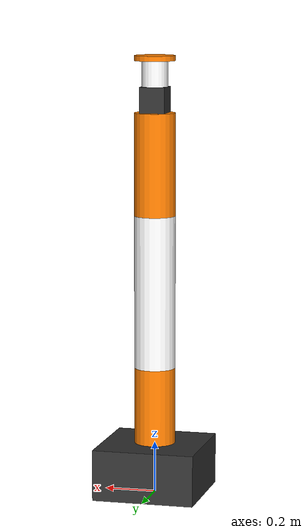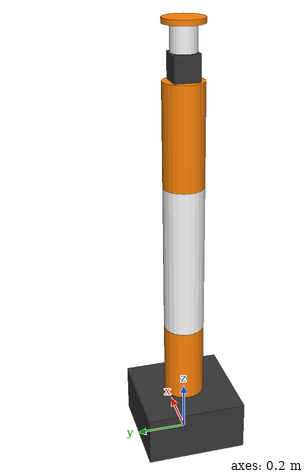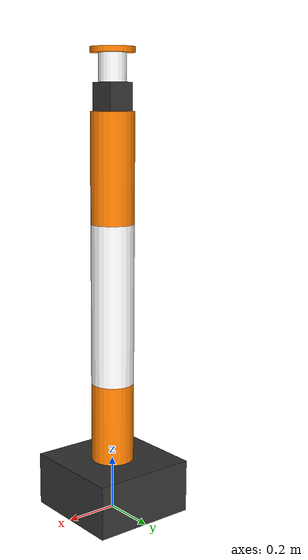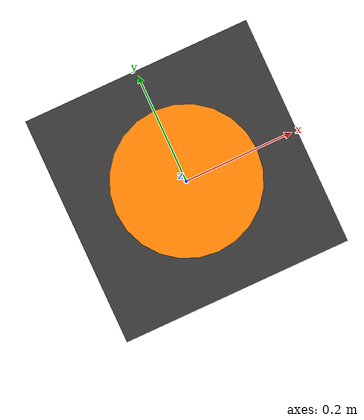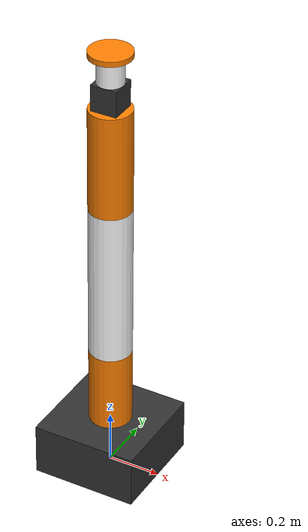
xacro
<?xml version="1.0"?>
<robot xmlns:xacro="http://www.ros.org/wiki/xacro" name="my_robot">

    <xacro:include filename="materials.xacro"/>
    <xacro:include filename="inertial_macros.xacro"/>

    <xacro:property name="base_width" value="0.4"/>
    <xacro:property name="base_height" value="0.2"/>
    <xacro:property name="link_radius" value="0.08"/>
    <xacro:property name="link_length" value="0.6"/>

    <ros2_control name="GazeboSystem" type="system">
        <hardware>
            <plugin>gazebo_ros2_control/GazeboSystem</plugin>
        </hardware>

        <joint name="joint_1">
            <command_interface name="position">
                <param name="min">-3.14</param>
                <param name="max">3.14</param>
            </command_interface>
            <state_interface name="position"/>
            <state_interface name="velocity"/>
        </joint>

        <joint name="joint_2">
            <command_interface name="position">
                <param name="min">-3.14</param>
                <param name="max">3.14</param>
            </command_interface>
            <state_interface name="position"/>
            <state_interface name="velocity"/>
        </joint>

        <joint name="joint_3">
            <command_interface name="position">
                <param name="min">-3.14</param>
                <param name="max">3.14</param>
            </command_interface>
            <state_interface name="position"/>
            <state_interface name="velocity"/>
        </joint>

        <joint name="joint_4">
            <command_interface name="position">
                <param name="min">-3.14</param>
                <param name="max">3.14</param>
            </command_interface>
            <state_interface name="position"/>
            <state_interface name="velocity"/>
        </joint>

        <joint name="joint_5">
            <command_interface name="position">
                <param name="min">-3.14</param>
                <param name="max">3.14</param>
            </command_interface>
            <state_interface name="position"/>
            <state_interface name="velocity"/>
        </joint>

        <joint name="joint_6">
            <command_interface name="position">
                <param name="min">-3.14</param>
                <param name="max">3.14</param>
            </command_interface>
            <state_interface name="position"/>
            <state_interface name="velocity"/>
        </joint>
    </ros2_control>

    <link name="base_link">
        <visual>
            <geometry>
                 <box size="${base_width} ${base_width} ${base_height}"/>
            </geometry>
            <origin xyz="0 0 ${base_height/2}" rpy="0 0 0"/>
            <material name="grey"/>
        </visual>
        <collision>
            <geometry>
                 <box size="${base_width} ${base_width} ${base_height}"/>
            </geometry>
            <origin xyz="0 0 ${base_height/2}" rpy="0 0 0"/>
        </collision>
        <xacro:inertial_box mass="12.0" x="${base_width}" y="${base_width}" z="${base_height}">
            <origin xyz="0 0 ${base_height/2}" rpy="0 0 0"/>
        </xacro:inertial_box>
    </link>
    <gazebo reference="base_link">
        <material>Gazebo/Grey</material>
    </gazebo>

    <joint name="joint_1" type="revolute">
        <parent link="base_link"/>
        <child link="link_1"/>
        <origin xyz="0 0 ${base_height}" rpy="0 0 0"/>
        <axis xyz="0 0 1"/>
        <limit lower="-3.14" upper="3.14" effort="100" velocity="1.0"/>
        <dynamics damping="0.1" friction="0.1"/>
    </joint>

    <link name="link_1">
        <visual>
            <geometry>
                <cylinder radius="${link_radius}" length="0.3"/>
            </geometry>
            <origin xyz="0 0 0.15" rpy="0 0 0"/>
            <material name="orange"/>
        </visual>
        <collision>
            <geometry>
                <cylinder radius="${link_radius}" length="0.3"/>
            </geometry>
            <origin xyz="0 0 0.15" rpy="0 0 0"/>
        </collision>
        <xacro:inertial_cylinder mass="4.0" length="0.3" radius="${link_radius}">
            <origin xyz="0 0 0.15" rpy="0 0 0"/>
        </xacro:inertial_cylinder>
    </link>
    <gazebo reference="link_1">
        <material>Gazebo/Orange</material>
    </gazebo>

    <joint name="joint_2" type="revolute">
        <parent link="link_1"/>
        <child link="link_2"/>
        <origin xyz="0 0 0.3" rpy="0 0 0"/>
        <axis xyz="0 1 0"/>
        <limit lower="-3.14" upper="3.14" effort="100" velocity="1.0"/>
        <dynamics damping="0.1" friction="0.1"/>
    </joint>

    <link name="link_2">
        <visual>
            <geometry>
                <cylinder radius="${link_radius}" length="${link_length}"/>
            </geometry>
            <origin xyz="0 0 ${link_length/2}" rpy="0 0 0"/>
            <material name="white"/>
        </visual>
        <collision>
            <geometry>
                <cylinder radius="${link_radius}" length="${link_length}"/>
            </geometry>
            <origin xyz="0 0 ${link_length/2}" rpy="0 0 0"/>
        </collision>
        <xacro:inertial_cylinder mass="2.0" length="${link_length}" radius="${link_radius}">
            <origin xyz="0 0 ${link_length/2}" rpy="0 0 0"/>
        </xacro:inertial_cylinder>
    </link>
    <gazebo reference="link_2">
        <material>Gazebo/White</material>
    </gazebo>

    <joint name="joint_3" type="revolute">
        <parent link="link_2"/>
        <child link="link_3"/>
        <origin xyz="0 0 ${link_length}" rpy="0 0 0"/>
        <axis xyz="0 1 0"/>
        <limit lower="-3.14" upper="3.14" effort="100" velocity="1.0"/>
        <dynamics damping="0.1" friction="0.1"/>
    </joint>

    <link name="link_3">
        <visual>
            <geometry>
                <cylinder radius="${link_radius}" length="${link_length/1.5}"/>
            </geometry>
            <origin xyz="0 0 ${link_length/3}" rpy="0 0 0"/>
            <material name="orange"/>
        </visual>
        <collision>
            <geometry>
                <cylinder radius="${link_radius}" length="${link_length/1.5}"/>
            </geometry>
            <origin xyz="0 0 ${link_length/3}" rpy="0 0 0"/>
        </collision>
        <xacro:inertial_cylinder mass="2.0" length="${link_length/1.5}" radius="${link_radius}">
            <origin xyz="0 0 ${link_length/3}" rpy="0 0 0"/>
        </xacro:inertial_cylinder>
    </link>
    <gazebo reference="link_3">
        <material>Gazebo/Orange</material>
    </gazebo>

    <joint name="joint_4" type="revolute">
        <parent link="link_3"/>
        <child link="link_4"/>
        <origin xyz="0 0 ${link_length/1.5}" rpy="0 0 0"/>
        <axis xyz="0 1 0"/>
        <limit lower="-3.14" upper="3.14" effort="100" velocity="1.0"/>
        <dynamics damping="0.1" friction="0.1"/>
    </joint>

    <link name="link_4">
        <visual>
            <geometry>
                <box size="0.1 0.1 0.1"/>
            </geometry>
            <origin xyz="0 0 0.05" rpy="0 0 0"/>
            <material name="grey"/>
        </visual>
        <collision>
            <geometry>
                <box size="0.1 0.1 0.1"/>
            </geometry>
            <origin xyz="0 0 0.05" rpy="0 0 0"/>
        </collision>
        <xacro:inertial_box mass="0.5" x="0.1" y="0.1" z="0.1">
            <origin xyz="0 0 0.05" rpy="0 0 0"/>
        </xacro:inertial_box>
    </link>
    <gazebo reference="link_4">
        <material>Gazebo/Grey</material>
    </gazebo>

    <joint name="joint_5" type="revolute">
        <parent link="link_4"/>
        <child link="link_5"/>
        <origin xyz="0 0 0.1" rpy="0 0 0"/>
        <axis xyz="0 0 1"/>
        <limit lower="-3.14" upper="3.14" effort="100" velocity="1.0"/>
        <dynamics damping="0.1" friction="0.1"/>
    </joint>

    <link name="link_5">
        <visual>
            <geometry>
                <cylinder radius="0.05" length="0.1"/>
            </geometry>
            <origin xyz="0 0 0.05" rpy="0 0 0"/>
            <material name="white"/>
        </visual>
        <collision>
            <geometry>
                <cylinder radius="0.05" length="0.1"/>
            </geometry>
            <origin xyz="0 0 0.05" rpy="0 0 0"/>
        </collision>
        <xacro:inertial_cylinder mass="0.5" length="0.1" radius="0.05">
            <origin xyz="0 0 0.05" rpy="0 0 0"/>
        </xacro:inertial_cylinder>
    </link>
    <gazebo reference="link_5">
        <material>Gazebo/White</material>
    </gazebo>

    <joint name="joint_6" type="revolute">
        <parent link="link_5"/>
        <child link="link_6"/>
        <origin xyz="0 0 0.1" rpy="0 0 0"/>
        <axis xyz="1 0 0"/>
        <limit lower="-3.14" upper="3.14" effort="100" velocity="1.0"/>
        <dynamics damping="0.1" friction="0.1"/>
    </joint>

    <link name="link_6">
        <visual>
            <geometry>
                <cylinder radius="0.08" length="0.02"/>
            </geometry>
            <origin xyz="0 0 0.01" rpy="0 0 0"/>
            <material name="orange"/>
        </visual>
        <collision>
            <geometry>
                <cylinder radius="0.08" length="0.02"/>
            </geometry>
            <origin xyz="0 0 0.01" rpy="0 0 0"/>
        </collision>
        <xacro:inertial_cylinder mass="0.2" length="0.02" radius="0.08">
            <origin xyz="0 0 0.01" rpy="0 0 0"/>
        </xacro:inertial_cylinder>
    </link>
    <gazebo reference="link_6">
        <material>Gazebo/Orange</material>
    </gazebo>

    <gazebo>
        <plugin filename="libgazebo_ros2_control.so" name="gazebo_ros2_control">
            <parameters>$(find my_robot_description)/config/my_controllers.yaml</parameters>
        </plugin>
    </gazebo>

</robot>

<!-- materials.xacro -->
<robot xmlns:xacro="http://www.ros.org/wiki/xacro">

    <material name="orange">
        <color rgba="1.0 0.5 0.0 1.0"/>
    </material>

    <material name="grey">
        <color rgba="0.2 0.2 0.2 1.0"/>
    </material>

    <material name="white">
        <color rgba="1.0 1.0 1.0 1.0"/>
    </material>

</robot>

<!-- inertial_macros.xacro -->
<robot xmlns:xacro="http://www.ros.org/wiki/xacro">

    <xacro:macro name="inertial_box" params="mass x y z *origin">
        <inertial>
            <xacro:insert_block name="origin"/>
            <mass value="${mass}" />
            <inertia ixx="${(1/12) * mass * (y*y + z*z)}" ixy="0.0" ixz="0.0"
                     iyy="${(1/12) * mass * (x*x + z*z)}" iyz="0.0"
                     izz="${(1/12) * mass * (x*x + y*y)}" />
        </inertial>
    </xacro:macro>

    <xacro:macro name="inertial_cylinder" params="mass length radius *origin">
        <inertial>
            <xacro:insert_block name="origin"/>
            <mass value="${mass}" />
            <inertia ixx="${(1/12) * mass * (3*radius*radius + length*length)}" ixy="0.0" ixz="0.0"
                     iyy="${(1/12) * mass * (3*radius*radius + length*length)}" iyz="0.0"
                     izz="${(1/2) * mass * (radius*radius)}" />
        </inertial>
    </xacro:macro>

</robot>
